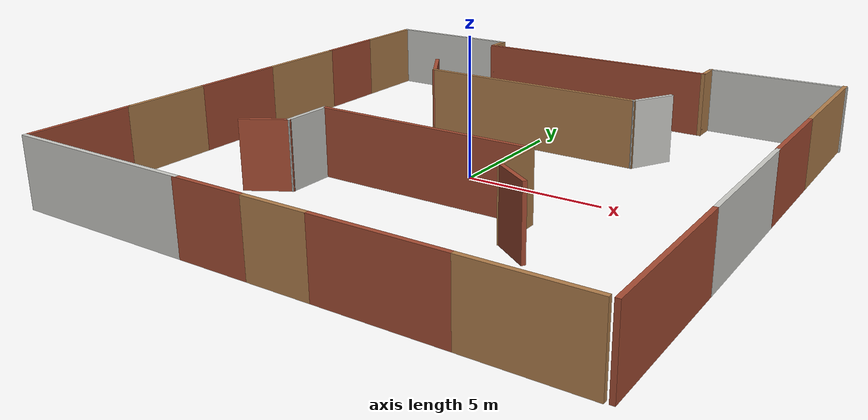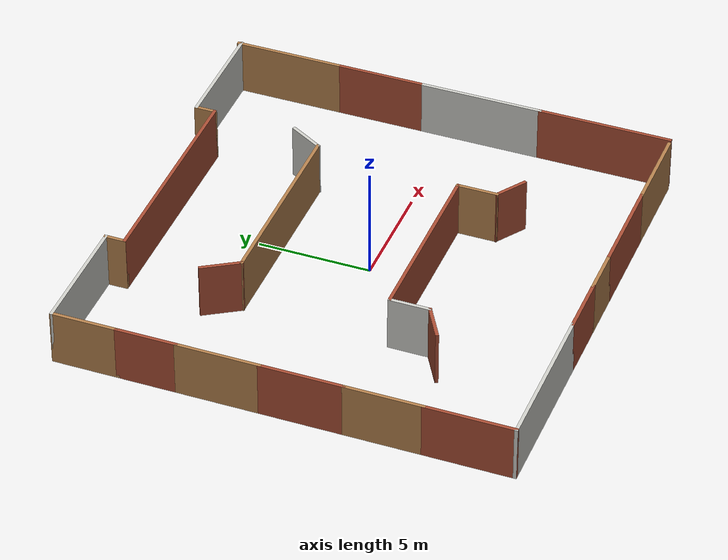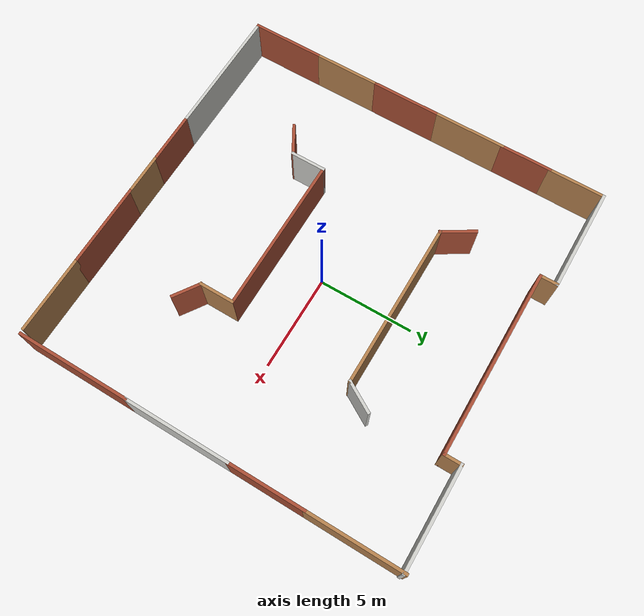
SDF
<?xml version='1.0'?>
<sdf version='1.6'>
  <model name='rtab_space'>
    <pose frame=''>0.025 0.037 0 0 -0 0</pose>
    <link name='Wall_101'>
      <collision name='Wall_101_Collision'>
        <geometry>
          <box>
            <size>1 0.15 2.5</size>
          </box>
        </geometry>
        <pose frame=''>0 0 1.25 0 -0 0</pose>
      </collision>
      <visual name='Wall_101_Visual'>
        <pose frame=''>0 0 1.25 0 -0 0</pose>
        <geometry>
          <box>
            <size>1 0.15 2.5</size>
          </box>
        </geometry>
        <material>
          <script>
            <uri>file://media/materials/scripts/gazebo.material</uri>
            <name>Gazebo/Wood</name>
          </script>
          <ambient>1 1 1 1</ambient>
        </material>
        <meta>
          <layer>0</layer>
        </meta>
      </visual>
      <pose frame=''>-4.675 9.452 0 0 0 -1.5708</pose>
    </link>
    <link name='Wall_102'>
      <collision name='Wall_102_Collision'>
        <geometry>
          <box>
            <size>9.75 0.15 2.5</size>
          </box>
        </geometry>
        <pose frame=''>0 0 1.25 0 -0 0</pose>
      </collision>
      <visual name='Wall_102_Visual'>
        <pose frame=''>0 0 1.25 0 -0 0</pose>
        <geometry>
          <box>
            <size>9.75 0.15 2.5</size>
          </box>
        </geometry>
        <material>
          <script>
            <uri>file://media/materials/scripts/gazebo.material</uri>
            <name>Gazebo/Bricks</name>
          </script>
          <ambient>1 1 1 1</ambient>
        </material>
        <meta>
          <layer>0</layer>
        </meta>
      </visual>
      <pose frame=''>0.125 9.027 0 0 -0 0</pose>
    </link>
    <link name='Wall_103'>
      <collision name='Wall_103_Collision'>
        <geometry>
          <box>
            <size>1 0.15 2.5</size>
          </box>
        </geometry>
        <pose frame=''>0 0 1.25 0 -0 0</pose>
      </collision>
      <visual name='Wall_103_Visual'>
        <pose frame=''>0 0 1.25 0 -0 0</pose>
        <geometry>
          <box>
            <size>1 0.15 2.5</size>
          </box>
        </geometry>
        <material>
          <script>
            <uri>file://media/materials/scripts/gazebo.material</uri>
            <name>Gazebo/Wood</name>
          </script>
          <ambient>1 1 1 1</ambient>
        </material>
        <meta>
          <layer>0</layer>
        </meta>
      </visual>
      <pose frame=''>4.925 9.452 0 0 -0 1.5708</pose>
    </link>
    <link name='Wall_104'>
      <collision name='Wall_104_Collision'>
        <geometry>
          <box>
            <size>5.25 0.15 2.5</size>
          </box>
        </geometry>
        <pose frame=''>0 0 1.25 0 -0 0</pose>
      </collision>
      <visual name='Wall_104_Visual'>
        <pose frame=''>0 0 1.25 0 -0 0</pose>
        <geometry>
          <box>
            <size>5.25 0.15 2.5</size>
          </box>
        </geometry>
        <material>
          <script>
            <uri>file://media/materials/scripts/gazebo.material</uri>
            <name>Gazebo/CeilingTiled</name>
          </script>
          <ambient>1 1 1 1</ambient>
        </material>
        <meta>
          <layer>0</layer>
        </meta>
      </visual>
      <pose frame=''>7.475 9.877 0 0 -0 0</pose>
    </link>
    <link name='Wall_106'>
      <collision name='Wall_106_Collision'>
        <geometry>
          <box>
            <size>1.87349 0.15 2.5</size>
          </box>
        </geometry>
        <pose frame=''>0 0 1.25 0 -0 0</pose>
      </collision>
      <visual name='Wall_106_Visual'>
        <pose frame=''>0 0 1.25 0 -0 0</pose>
        <geometry>
          <box>
            <size>1.87349 0.15 2.5</size>
          </box>
        </geometry>
        <material>
          <script>
            <uri>file://media/materials/scripts/gazebo.material</uri>
            <name>Gazebo/Bricks</name>
          </script>
          <ambient>1 1 1 1</ambient>
        </material>
        <meta>
          <layer>0</layer>
        </meta>
      </visual>
      <pose frame=''>-4.7276 4.69632 0 0 0 -1.01783</pose>
    </link>
    <link name='Wall_107'>
      <collision name='Wall_107_Collision'>
        <geometry>
          <box>
            <size>8.65 0.15 2.5</size>
          </box>
        </geometry>
        <pose frame=''>0 0 1.25 0 -0 0</pose>
      </collision>
      <visual name='Wall_107_Visual'>
        <pose frame=''>0 0 1.25 0 -0 0</pose>
        <geometry>
          <box>
            <size>8.65 0.15 2.5</size>
          </box>
        </geometry>
        <material>
          <script>
            <uri>file://media/materials/scripts/gazebo.material</uri>
            <name>Gazebo/Wood</name>
          </script>
          <ambient>1 1 1 1</ambient>
        </material>
        <meta>
          <layer>0</layer>
        </meta>
      </visual>
      <pose frame=''>-0.025 3.963 0 0 -0 0</pose>
    </link>
    <link name='Wall_108'>
      <collision name='Wall_108_Collision'>
        <geometry>
          <box>
            <size>1.75 0.15 2.5</size>
          </box>
        </geometry>
        <pose frame=''>0 0 1.25 0 -0 0</pose>
      </collision>
      <visual name='Wall_108_Visual'>
        <pose frame=''>0 0 1.25 0 -0 0</pose>
        <geometry>
          <box>
            <size>1.75 0.15 2.5</size>
          </box>
        </geometry>
        <material>
          <script>
            <uri>file://media/materials/scripts/gazebo.material</uri>
            <name>Gazebo/CeilingTiled</name>
          </script>
          <ambient>1 1 1 1</ambient>
        </material>
        <meta>
          <layer>0</layer>
        </meta>
      </visual>
      <pose frame=''>4.625 4.65582 0 0 -0 1.0472</pose>
    </link>
    <link name='Wall_113'>
      <collision name='Wall_113_Collision'>
        <geometry>
          <box>
            <size>1.75 0.15 2.5</size>
          </box>
        </geometry>
        <pose frame=''>0 0 1.25 0 -0 0</pose>
      </collision>
      <visual name='Wall_113_Visual'>
        <pose frame=''>0 0 1.25 0 -0 0</pose>
        <geometry>
          <box>
            <size>1.75 0.15 2.5</size>
          </box>
        </geometry>
        <material>
          <script>
            <uri>file://media/materials/scripts/gazebo.material</uri>
            <name>Gazebo/Bricks</name>
          </script>
          <ambient>1 1 1 1</ambient>
        </material>
        <meta>
          <layer>0</layer>
        </meta>
      </visual>
      <pose frame=''>-5.02082 -4.687 0 0 -0 0.523599</pose>
    </link>
    <link name='Wall_116'>
      <collision name='Wall_116_Collision'>
        <geometry>
          <box>
            <size>1.891 0.15 2.5</size>
          </box>
        </geometry>
        <pose frame=''>0 0 1.25 0 -0 0</pose>
      </collision>
      <visual name='Wall_116_Visual'>
        <pose frame=''>0 0 1.25 0 -0 0</pose>
        <geometry>
          <box>
            <size>1.891 0.15 2.5</size>
          </box>
        </geometry>
        <material>
          <script>
            <uri>file://media/materials/scripts/gazebo.material</uri>
            <name>Gazebo/CeilingTiled</name>
          </script>
          <ambient>1 1 1 1</ambient>
        </material>
        <meta>
          <layer>0</layer>
        </meta>
      </visual>
      <pose frame=''>-4.328 -3.4165 0 0 -0 1.5708</pose>
    </link>
    <link name='Wall_117'>
      <collision name='Wall_117_Collision'>
        <geometry>
          <box>
            <size>8.25 0.15 2.5</size>
          </box>
        </geometry>
        <pose frame=''>0 0 1.25 0 -0 0</pose>
      </collision>
      <visual name='Wall_117_Visual'>
        <pose frame=''>0 0 1.25 0 -0 0</pose>
        <geometry>
          <box>
            <size>8.25 0.15 2.5</size>
          </box>
        </geometry>
        <material>
          <script>
            <uri>file://media/materials/scripts/gazebo.material</uri>
            <name>Gazebo/Bricks</name>
          </script>
          <ambient>1 1 1 1</ambient>
        </material>
        <meta>
          <layer>0</layer>
        </meta>
      </visual>
      <pose frame=''>-0.278 -2.546 0 0 -0 0</pose>
    </link>
    <link name='Wall_118'>
      <collision name='Wall_118_Collision'>
        <geometry>
          <box>
            <size>1.891 0.15 2.5</size>
          </box>
        </geometry>
        <pose frame=''>0 0 1.25 0 -0 0</pose>
      </collision>
      <visual name='Wall_118_Visual'>
        <pose frame=''>0 0 1.25 0 -0 0</pose>
        <geometry>
          <box>
            <size>1.891 0.15 2.5</size>
          </box>
        </geometry>
        <material>
          <script>
            <uri>file://media/materials/scripts/gazebo.material</uri>
            <name>Gazebo/Wood</name>
          </script>
          <ambient>1 1 1 1</ambient>
        </material>
        <meta>
          <layer>0</layer>
        </meta>
      </visual>
      <pose frame=''>3.772 -3.4165 0 0 0 -1.5708</pose>
    </link>
    <link name='Wall_119'>
      <collision name='Wall_119_Collision'>
        <geometry>
          <box>
            <size>1.6 0.15 2.5</size>
          </box>
        </geometry>
        <pose frame=''>0 0 1.25 0 -0 0</pose>
      </collision>
      <visual name='Wall_119_Visual'>
        <pose frame=''>0 0 1.25 0 -0 0</pose>
        <geometry>
          <box>
            <size>1.6 0.15 2.5</size>
          </box>
        </geometry>
        <material>
          <script>
            <uri>file://media/materials/scripts/gazebo.material</uri>
            <name>Gazebo/Bricks</name>
          </script>
          <ambient>1 1 1 1</ambient>
        </material>
        <meta>
          <layer>0</layer>
        </meta>
      </visual>
      <pose frame=''>4.374 -4.691 0 0 0 -0.591063</pose>
    </link>
    <link name='Wall_34'>
      <collision name='Wall_34_Collision'>
        <geometry>
          <box>
            <size>4 0.15 2.5</size>
          </box>
        </geometry>
        <pose frame=''>0 0 1.25 0 -0 0</pose>
      </collision>
      <visual name='Wall_34_Visual'>
        <pose frame=''>0 0 1.25 0 -0 0</pose>
        <geometry>
          <box>
            <size>4 0.15 2.5</size>
          </box>
        </geometry>
        <material>
          <script>
            <uri>file://media/materials/scripts/gazebo.material</uri>
            <name>Gazebo/Bricks</name>
          </script>
          <ambient>1 1 1 1</ambient>
        </material>
        <meta>
          <layer>0</layer>
        </meta>
      </visual>
      <pose frame=''>-10.025 -8.048 0 0 -0 1.5708</pose>
    </link>
    <link name='Wall_35'>
      <collision name='Wall_35_Collision'>
        <geometry>
          <box>
            <size>3.5 0.15 2.5</size>
          </box>
        </geometry>
        <pose frame=''>0 0 1.25 0 -0 0</pose>
      </collision>
      <visual name='Wall_35_Visual'>
        <pose frame=''>0 0 1.25 0 -0 0</pose>
        <geometry>
          <box>
            <size>3.5 0.15 2.5</size>
          </box>
        </geometry>
        <material>
          <script>
            <uri>file://media/materials/scripts/gazebo.material</uri>
            <name>Gazebo/Wood</name>
          </script>
          <ambient>1 1 1 1</ambient>
        </material>
        <meta>
          <layer>0</layer>
        </meta>
      </visual>
      <pose frame=''>-10.025 -4.448 0 0 -0 1.5708</pose>
    </link>
    <link name='Wall_36'>
      <collision name='Wall_36_Collision'>
        <geometry>
          <box>
            <size>3.75 0.15 2.5</size>
          </box>
        </geometry>
        <pose frame=''>0 0 1.25 0 -0 0</pose>
      </collision>
      <visual name='Wall_36_Visual'>
        <pose frame=''>0 0 1.25 0 -0 0</pose>
        <geometry>
          <box>
            <size>3.75 0.15 2.5</size>
          </box>
        </geometry>
        <material>
          <script>
            <uri>file://media/materials/scripts/gazebo.material</uri>
            <name>Gazebo/Bricks</name>
          </script>
          <ambient>1 1 1 1</ambient>
        </material>
        <meta>
          <layer>0</layer>
        </meta>
      </visual>
      <pose frame=''>-10.025 -0.973 0 0 -0 1.5708</pose>
    </link>
    <link name='Wall_37'>
      <collision name='Wall_37_Collision'>
        <geometry>
          <box>
            <size>3.75 0.15 2.5</size>
          </box>
        </geometry>
        <pose frame=''>0 0 1.25 0 -0 0</pose>
      </collision>
      <visual name='Wall_37_Visual'>
        <pose frame=''>0 0 1.25 0 -0 0</pose>
        <geometry>
          <box>
            <size>3.75 0.15 2.5</size>
          </box>
        </geometry>
        <material>
          <script>
            <uri>file://media/materials/scripts/gazebo.material</uri>
            <name>Gazebo/Wood</name>
          </script>
          <ambient>1 1 1 1</ambient>
        </material>
        <meta>
          <layer>0</layer>
        </meta>
      </visual>
      <pose frame=''>-10.025 2.627 0 0 -0 1.5708</pose>
    </link>
    <link name='Wall_38'>
      <collision name='Wall_38_Collision'>
        <geometry>
          <box>
            <size>2.75 0.15 2.5</size>
          </box>
        </geometry>
        <pose frame=''>0 0 1.25 0 -0 0</pose>
      </collision>
      <visual name='Wall_38_Visual'>
        <pose frame=''>0 0 1.25 0 -0 0</pose>
        <geometry>
          <box>
            <size>2.75 0.15 2.5</size>
          </box>
        </geometry>
        <material>
          <script>
            <uri>file://media/materials/scripts/gazebo.material</uri>
            <name>Gazebo/Bricks</name>
          </script>
          <ambient>1 1 1 1</ambient>
        </material>
        <meta>
          <layer>0</layer>
        </meta>
      </visual>
      <pose frame=''>-10.025 5.727 0 0 -0 1.5708</pose>
    </link>
    <link name='Wall_39'>
      <collision name='Wall_39_Collision'>
        <geometry>
          <box>
            <size>3 0.15 2.5</size>
          </box>
        </geometry>
        <pose frame=''>0 0 1.25 0 -0 0</pose>
      </collision>
      <visual name='Wall_39_Visual'>
        <pose frame=''>0 0 1.25 0 -0 0</pose>
        <geometry>
          <box>
            <size>3 0.15 2.5</size>
          </box>
        </geometry>
        <material>
          <script>
            <uri>file://media/materials/scripts/gazebo.material</uri>
            <name>Gazebo/Wood</name>
          </script>
          <ambient>1 1 1 1</ambient>
        </material>
        <meta>
          <layer>0</layer>
        </meta>
      </visual>
      <pose frame=''>-10.025 8.452 0 0 -0 1.5708</pose>
    </link>
    <link name='Wall_41'>
      <collision name='Wall_41_Collision'>
        <geometry>
          <box>
            <size>6 0.15 2.5</size>
          </box>
        </geometry>
        <pose frame=''>0 0 1.25 0 -0 0</pose>
      </collision>
      <visual name='Wall_41_Visual'>
        <pose frame=''>0 0 1.25 0 -0 0</pose>
        <geometry>
          <box>
            <size>6 0.15 2.5</size>
          </box>
        </geometry>
        <material>
          <script>
            <uri>file://media/materials/scripts/gazebo.material</uri>
            <name>Gazebo/Bricks</name>
          </script>
          <ambient>1 1 1 1</ambient>
        </material>
        <meta>
          <layer>0</layer>
        </meta>
      </visual>
      <pose frame=''>9.975 -7.002 0 0 -0 1.5708</pose>
    </link>
    <link name='Wall_42'>
      <collision name='Wall_42_Collision'>
        <geometry>
          <box>
            <size>5.5 0.15 2.5</size>
          </box>
        </geometry>
        <pose frame=''>0 0 1.25 0 -0 0</pose>
      </collision>
      <visual name='Wall_42_Visual'>
        <pose frame=''>0 0 1.25 0 -0 0</pose>
        <geometry>
          <box>
            <size>5.5 0.15 2.5</size>
          </box>
        </geometry>
        <material>
          <script>
            <uri>file://media/materials/scripts/gazebo.material</uri>
            <name>Gazebo/CeilingTiled</name>
          </script>
          <ambient>1 1 1 1</ambient>
        </material>
        <meta>
          <layer>0</layer>
        </meta>
      </visual>
      <pose frame=''>9.975 -1.402 0 0 -0 1.5708</pose>
    </link>
    <link name='Wall_43'>
      <collision name='Wall_43_Collision'>
        <geometry>
          <box>
            <size>4 0.15 2.5</size>
          </box>
        </geometry>
        <pose frame=''>0 0 1.25 0 -0 0</pose>
      </collision>
      <visual name='Wall_43_Visual'>
        <pose frame=''>0 0 1.25 0 -0 0</pose>
        <geometry>
          <box>
            <size>4 0.15 2.5</size>
          </box>
        </geometry>
        <material>
          <script>
            <uri>file://media/materials/scripts/gazebo.material</uri>
            <name>Gazebo/Bricks</name>
          </script>
          <ambient>1 1 1 1</ambient>
        </material>
        <meta>
          <layer>0</layer>
        </meta>
      </visual>
      <pose frame=''>9.975 3.198 0 0 -0 1.5708</pose>
    </link>
    <link name='Wall_44'>
      <collision name='Wall_44_Collision'>
        <geometry>
          <box>
            <size>5 0.15 2.5</size>
          </box>
        </geometry>
        <pose frame=''>0 0 1.25 0 -0 0</pose>
      </collision>
      <visual name='Wall_44_Visual'>
        <pose frame=''>0 0 1.25 0 -0 0</pose>
        <geometry>
          <box>
            <size>5 0.15 2.5</size>
          </box>
        </geometry>
        <material>
          <script>
            <uri>file://media/materials/scripts/gazebo.material</uri>
            <name>Gazebo/Wood</name>
          </script>
          <ambient>1 1 1 1</ambient>
        </material>
        <meta>
          <layer>0</layer>
        </meta>
      </visual>
      <pose frame=''>9.975 7.548 0 0 -0 1.5708</pose>
    </link>
    <link name='Wall_46'>
      <collision name='Wall_46_Collision'>
        <geometry>
          <box>
            <size>7 0.15 2.5</size>
          </box>
        </geometry>
        <pose frame=''>0 0 1.25 0 -0 0</pose>
      </collision>
      <visual name='Wall_46_Visual'>
        <pose frame=''>0 0 1.25 0 -0 0</pose>
        <geometry>
          <box>
            <size>7 0.15 2.5</size>
          </box>
        </geometry>
        <material>
          <script>
            <uri>file://media/materials/scripts/gazebo.material</uri>
            <name>Gazebo/CeilingTiled</name>
          </script>
          <ambient>1 1 1 1</ambient>
        </material>
        <meta>
          <layer>0</layer>
        </meta>
      </visual>
      <pose frame=''>-6.6 -9.973 0 0 -0 0</pose>
    </link>
    <link name='Wall_47'>
      <collision name='Wall_47_Collision'>
        <geometry>
          <box>
            <size>2.75 0.15 2.5</size>
          </box>
        </geometry>
        <pose frame=''>0 0 1.25 0 -0 0</pose>
      </collision>
      <visual name='Wall_47_Visual'>
        <pose frame=''>0 0 1.25 0 -0 0</pose>
        <geometry>
          <box>
            <size>2.75 0.15 2.5</size>
          </box>
        </geometry>
        <material>
          <script>
            <uri>file://media/materials/scripts/gazebo.material</uri>
            <name>Gazebo/Bricks</name>
          </script>
          <ambient>1 1 1 1</ambient>
        </material>
        <meta>
          <layer>0</layer>
        </meta>
      </visual>
      <pose frame=''>-1.875 -9.973 0 0 -0 0</pose>
    </link>
    <link name='Wall_48'>
      <collision name='Wall_48_Collision'>
        <geometry>
          <box>
            <size>2.25 0.15 2.5</size>
          </box>
        </geometry>
        <pose frame=''>0 0 1.25 0 -0 0</pose>
      </collision>
      <visual name='Wall_48_Visual'>
        <pose frame=''>0 0 1.25 0 -0 0</pose>
        <geometry>
          <box>
            <size>2.25 0.15 2.5</size>
          </box>
        </geometry>
        <material>
          <script>
            <uri>file://media/materials/scripts/gazebo.material</uri>
            <name>Gazebo/Wood</name>
          </script>
          <ambient>1 1 1 1</ambient>
        </material>
        <meta>
          <layer>0</layer>
        </meta>
      </visual>
      <pose frame=''>0.475 -9.973 0 0 -0 0</pose>
    </link>
    <link name='Wall_49'>
      <collision name='Wall_49_Collision'>
        <geometry>
          <box>
            <size>4.5 0.15 2.5</size>
          </box>
        </geometry>
        <pose frame=''>0 0 1.25 0 -0 0</pose>
      </collision>
      <visual name='Wall_49_Visual'>
        <pose frame=''>0 0 1.25 0 -0 0</pose>
        <geometry>
          <box>
            <size>4.5 0.15 2.5</size>
          </box>
        </geometry>
        <material>
          <script>
            <uri>file://media/materials/scripts/gazebo.material</uri>
            <name>Gazebo/Bricks</name>
          </script>
          <ambient>1 1 1 1</ambient>
        </material>
        <meta>
          <layer>0</layer>
        </meta>
      </visual>
      <pose frame=''>3.7 -9.973 0 0 -0 0</pose>
    </link>
    <link name='Wall_50'>
      <collision name='Wall_50_Collision'>
        <geometry>
          <box>
            <size>4 0.15 2.5</size>
          </box>
        </geometry>
        <pose frame=''>0 0 1.25 0 -0 0</pose>
      </collision>
      <visual name='Wall_50_Visual'>
        <pose frame=''>0 0 1.25 0 -0 0</pose>
        <geometry>
          <box>
            <size>4 0.15 2.5</size>
          </box>
        </geometry>
        <material>
          <script>
            <uri>file://media/materials/scripts/gazebo.material</uri>
            <name>Gazebo/Wood</name>
          </script>
          <ambient>1 1 1 1</ambient>
        </material>
        <meta>
          <layer>0</layer>
        </meta>
      </visual>
      <pose frame=''>7.8 -9.973 0 0 -0 0</pose>
    </link>
    <link name='Wall_99'>
      <collision name='Wall_99_Collision'>
        <geometry>
          <box>
            <size>5.5 0.15 2.5</size>
          </box>
        </geometry>
        <pose frame=''>0 0 1.25 0 -0 0</pose>
      </collision>
      <visual name='Wall_99_Visual'>
        <pose frame=''>0 0 1.25 0 -0 0</pose>
        <geometry>
          <box>
            <size>5.5 0.15 2.5</size>
          </box>
        </geometry>
        <material>
          <script>
            <uri>file://media/materials/scripts/gazebo.material</uri>
            <name>Gazebo/CeilingTiled</name>
          </script>
          <ambient>1 1 1 1</ambient>
        </material>
        <meta>
          <layer>0</layer>
        </meta>
      </visual>
      <pose frame=''>-7.35 9.877 0 0 -0 0</pose>
    </link>
    <static>1</static>
  </model>
</sdf>
